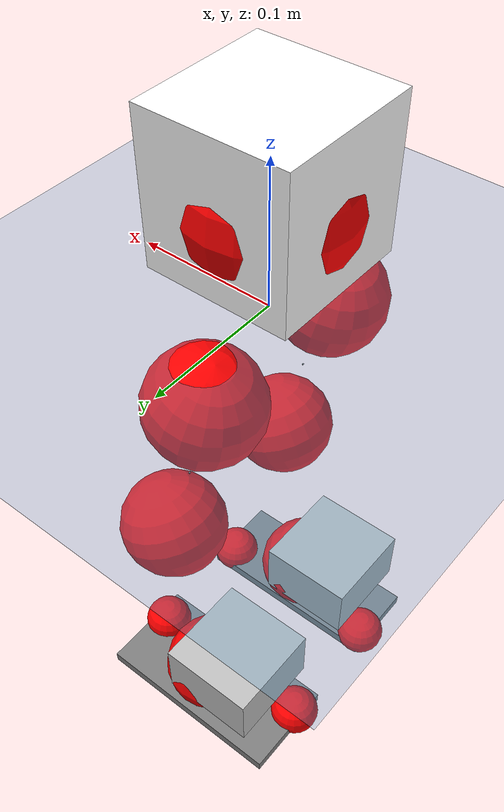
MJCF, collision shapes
<mujoco model="pi_12dof_release_v1">
  <compiler angle="radian" assetdir="assets" balanceinertia="true" inertiafromgeom="false"/>

  <option timestep="0.005" density="1.2" viscosity="2e-05"/>

  <size nkey="1"/>

  <visual>
    <quality shadowsize="8192"/>
    <map shadowclip="0.5"/>
  </visual>

  <default>
    <default class="/">
      <joint armature="0.01" damping="0.01" frictionloss="0.01"/>
      <geom contype="0" conaffinity="0" group="1" solref="-1000 -80"/>
      <site size="0.01 0.005 0.005" group="5"/>
      <general forcelimited="true" biastype="affine" gainprm="20" biasprm="0 -20 -0.5"/>
      <default class="foot">
        <geom size="0.0845 0.036 0.005" type="box" condim="6" group="4" priority="1" friction="0.9 0.2 0.2" solimp="0.015 1 0.005"/>
      </default>
      <default class="reward_collision_sphere">
        <geom group="5" rgba="1 0 0 1"/>
      </default>
    </default>
  </default>

  <asset>
    <texture type="skybox" colorspace="auto" name="//unnamed_texture_0" builtin="gradient" rgb1="0.95 0.95 0.95" rgb2="0.95 0.95 0.95" width="100" height="600"/>
    <texture type="2d" colorspace="auto" name="texplane" builtin="checker" rgb1="0.345 0.575 0.748" rgb2="0.345 0.575 0.748" markrgb="1 1 1" width="512" height="512"/>
    <material name="MatPlane" class="/" texture="texplane" texuniform="true" texrepeat="2 2" specular="0.9"/>
    <mesh name="baselink_1" class="/" file="baselink_1.STL"/>
    <mesh name="r_hip_pitch_link" class="/" file="r_hip_pitch_link.STL"/>
    <mesh name="r_hip_roll_link" class="/" file="r_hip_roll_link.STL"/>
    <mesh name="r_thigh_link" class="/" file="r_thigh_link.STL"/>
    <mesh name="r_calf_link" class="/" file="r_calf_link.STL"/>
    <mesh name="r_ankle_pitch_link" class="/" file="r_ankle_pitch_link.STL"/>
    <mesh name="r_ankle_roll_link" class="/" file="r_ankle_roll_link.STL"/>
    <mesh name="l_hip_pitch_link" class="/" file="l_hip_pitch_link.STL"/>
    <mesh name="l_hip_roll_link" class="/" file="l_hip_roll_link.STL"/>
    <mesh name="l_thigh_link" class="/" file="l_thigh_link.STL"/>
    <mesh name="l_calf_link" class="/" file="l_calf_link.STL"/>
    <mesh name="l_ankle_pitch_link" class="/" file="l_ankle_pitch_link.STL"/>
    <mesh name="l_ankle_roll_link" class="/" file="l_ankle_roll_link.STL"/>
  </asset>

  <worldbody>
    <geom name="floor" class="/" size="100 100 0.125" type="plane" group="0" material="MatPlane"/>
    <light name="toplight_shadow" class="/" pos="0 0 5" dir="0.0990148 0.0990148 -0.990148" type="directional" ambient="0.04 0.04 0.04" diffuse="0.55 0.55 0.55" specular="0.12 0.12 0.12"/>
    <light name="toplight_fill" class="/" pos="0 0 5" dir="0.0990148 0.0990148 -0.990148" type="directional" castshadow="false" ambient="0.04 0.04 0.04" diffuse="0.3 0.3 0.3" specular="0.08 0.08 0.08"/>
    <body name="trunk" pos="-0.000169354 -0.000331862 -0.00263738" quat="0.999999 0.000324522 -0.000459728 0.00114261">
      <inertial pos="0.00112609 0.00102718 0.0443614" quat="0.692267 0.00108854 0.0173816 0.721432" mass="2.15669" diaginertia="0.013374 0.0039314 0.00662754"/>
      <joint name="//unnamed_joint_0" type="free"/>
      <geom name="//unnamed_geom_1" class="/" type="mesh" density="0" rgba="1 1 1 1" mesh="baselink_1"/>
      <geom name="//unnamed_geom_2" class="/" size="0.0497737 0.0497737 0.0497737" pos="0 0 0.0871204" type="box" rgba="1 1 1 1"/>
      <geom name="//unnamed_geom_3" class="reward_collision_sphere" size="0.0547511" pos="0 0 0.0762303"/>
      <site name="imu" class="/" pos="-0.00409537 0.00330148 -0.00949146" size="0.00995474"/>
      <camera name="track" class="/" pos="0 -1.67962 0" quat="0.707107 0.707107 0 0" mode="trackcom"/>
      <camera name="ego_camera" class="/" pos="0.0793205 0 0.196021" quat="-0.5 -0.5 0.5 0.5"/>
      <body name="r_hip_pitch_link" pos="0.00159881 -0.0194601 -0.0341773" quat="0.992201 -2.16803e-05 -0.124648 -1.28335e-05">
        <inertial pos="-0.00124426 -0.0478401 -0.00242439" quat="-0.0280218 0.701097 -0.0353638 0.711637" mass="0.361879" diaginertia="0.000145537 4.12017e-05 0.000126206"/>
        <joint name="r_hip_pitch_joint" class="/" pos="0 0 0" axis="-0.00474281 -0.999986 -0.00232919" stiffness="0.00318335" range="-1.77133 1.27153" armature="0.00990801" damping="0.0169675" frictionloss="0.00966639"/>
        <geom name="//unnamed_geom_4" class="/" type="mesh" density="0" rgba="0.75294 0.75294 0.75294 1" mesh="r_hip_pitch_link"/>
        <geom name="//unnamed_geom_5" class="/" size="0.000497737 0.000497737 0.000497737" type="box" rgba="0.75294 0.75294 0.75294 1"/>
        <body name="r_hip_roll_link" pos="-0.00153107 -0.0459872 0.00240047" quat="1 1.7847e-05 1.22093e-05 -0.000197894">
          <inertial pos="-0.000933613 0.000177813 -0.0649848" quat="0.702751 -0.0775741 -0.0832269 0.70228" mass="0.367415" diaginertia="0.000424523 0.000112807 0.000186134"/>
          <joint name="r_hip_roll_joint" class="/" pos="0 0 0" axis="-0.999973 0.00295702 -0.00679958" stiffness="0.000180421" range="-0.116434 0.500915" armature="0.00865346" damping="0.0076159" frictionloss="0.0103645"/>
          <geom name="//unnamed_geom_6" class="/" type="mesh" density="0" rgba="0.75294 0.75294 0.75294 1" mesh="r_hip_roll_link"/>
          <geom name="//unnamed_geom_7" class="/" size="0.000497737 0.000497737 0.000497737" type="box" rgba="0.75294 0.75294 0.75294 1"/>
          <geom name="//unnamed_geom_8" class="reward_collision_sphere" size="0.039819"/>
          <body name="r_thigh_link" pos="0.00147938 0.000376896 -0.0749486" quat="1 0.000350969 7.24071e-05 -5.59038e-05">
            <inertial pos="-0.00226849 -0.00180592 -0.0520825" quat="0.737451 0.675395 0.00197339 -0.00191348" mass="0.11012" diaginertia="0.000159205 3.93973e-05 8.85548e-05"/>
            <joint name="r_thigh_joint" class="/" pos="0 0 0" axis="-0.00242971 -0.000140662 -0.999997" range="-0.303617 0.636122" armature="0.00875627" damping="0.0119237" frictionloss="0.0102741"/>
            <geom name="//unnamed_geom_9" class="/" type="mesh" density="0" rgba="0.75294 0.75294 0.75294 1" mesh="r_thigh_link"/>
            <geom name="//unnamed_geom_10" class="/" size="0.000497737 0.000497737 0.000497737" type="box" rgba="0.75294 0.75294 0.75294 1"/>
            <body name="r_calf_link" pos="-0.00158445 -0.00105575 -0.0765335" quat="0.947782 0.00107174 0.318917 0.00069957">
              <inertial pos="-2.34539e-05 -0.000786012 -0.0765523" quat="0.999895 -0.00161256 -0.0128902 0.0064666" mass="0.839559" diaginertia="0.00467538 0.00147667 0.000269524"/>
              <joint name="r_calf_joint" class="/" pos="0 0 0" axis="0.00515079 -0.999986 0.00156548" stiffness="0.00283861" range="-1.64507 0.65441" armature="0.0100224" damping="0.0100847" frictionloss="0.0101063"/>
              <geom name="//unnamed_geom_11" class="/" type="mesh" density="0" rgba="0.75294 0.75294 0.75294 1" mesh="r_calf_link"/>
              <geom name="//unnamed_geom_12" class="/" size="0.000497737 0.000497737 0.000497737" type="box" rgba="0.75294 0.75294 0.75294 1"/>
              <geom name="//unnamed_geom_13" class="reward_collision_sphere" size="0.039819"/>
              <body name="r_ankle_pitch_link" pos="0.0012003 0.000707179 -0.152187" quat="0.980068 -1.36033e-05 -0.198661 2.25224e-05">
                <inertial pos="0.00513752 0.00277309 0.000701942" quat="-0.000978076 0.705951 -0.00607324 0.708234" mass="0.177109" diaginertia="0.000408712 9.00712e-05 0.000182313"/>
                <joint name="r_ankle_pitch_joint" class="/" pos="0 0 0" axis="-0.00256781 -0.999995 -0.00191537" range="-1.30601 0.498563" armature="0.0102781" damping="0.0233687" frictionloss="0.00968821"/>
                <geom name="//unnamed_geom_14" class="/" type="mesh" density="0" rgba="0.75294 0.75294 0.75294 1" mesh="r_ankle_pitch_link"/>
                <geom name="//unnamed_geom_15" class="/" size="0.0388235 0.039819 0.0248868" type="box" rgba="0.75294 0.75294 0.75294 1"/>
                <body name="r_ankle_roll_link" pos="0.0786602 0.0010396 0.000858438" quat="1 -0.000141232 0.000527305 3.93353e-06">
                  <inertial pos="-0.0238258 -0.00234536 -0.0140044" quat="0.567519 0.420406 0.431686 0.561096" mass="0.498992" diaginertia="0.0014408 0.000429589 0.000414972"/>
                  <joint name="r_ankle_roll_joint" class="/" pos="0 0 0" axis="-0.999993 -0.00214434 -0.00321851" range="-0.202921 0.166101" armature="0.00877604" damping="0.0057184" frictionloss="0.00867865"/>
                  <geom name="//unnamed_geom_16" class="/" type="mesh" density="0" rgba="0.75294 0.75294 0.75294 1" mesh="r_ankle_roll_link"/>
                  <geom name="//unnamed_geom_17" class="/" type="mesh" rgba="0.75294 0.75294 0.75294 1" mesh="r_ankle_roll_link"/>
                  <geom name="right_foot" class="foot" size="0.0800438 0.0334587 0.00439955" pos="-0.0539379 0 -0.0479162"/>
                  <geom name="//unnamed_geom_19" class="reward_collision_sphere" size="0.039819" pos="-0.0528803 0 -0.0217801"/>
                  <geom name="//unnamed_geom_20" class="reward_collision_sphere" size="0.0199095" pos="0.0158641 0.0167962 -0.0435602"/>
                  <geom name="//unnamed_geom_21" class="reward_collision_sphere" size="0.0199095" pos="-0.126913 0.0167962 -0.0435602"/>
                  <site name="right_foot" class="foot" pos="-0.0539379 0 -0.0479162" size="0.00995474"/>
                </body>
              </body>
            </body>
          </body>
        </body>
      </body>
      <body name="l_hip_pitch_link" pos="0.000518012 0.0183086 -0.034123" quat="0.992146 8.10222e-05 -0.125082 -5.86826e-05">
        <inertial pos="0.00146657 0.0426168 -0.00261733" quat="-0.0374497 0.70637 0.0322114 0.706117" mass="0.381134" diaginertia="0.000168544 4.32506e-05 0.000149526"/>
        <joint name="l_hip_pitch_joint" class="/" pos="0 0 0" axis="0.00328261 0.99992 -0.0121899" range="-1.29934 1.74941" armature="0.0100177" damping="0" frictionloss="0.0100953"/>
        <geom name="//unnamed_geom_22" class="/" type="mesh" density="0" rgba="0.75294 0.75294 0.75294 1" mesh="l_hip_pitch_link"/>
        <geom name="//unnamed_geom_23" class="/" size="0.000497737 0.000497737 0.000497737" type="box" rgba="0.75294 0.75294 0.75294 1"/>
        <body name="l_hip_roll_link" pos="-0.00111645 0.0445608 0.00219945" quat="1 0.000616932 0.00034387 0.000365508">
          <inertial pos="0.001036 -0.00178345 -0.0692033" quat="0.699324 -0.0753878 -0.0778315 0.706545" mass="0.393005" diaginertia="0.000469786 0.000119164 0.000206681"/>
          <joint name="l_hip_roll_joint" class="/" pos="0 0 0" axis="-0.999991 -0.000213963 0.00413497" range="-0.50296 0.102558" armature="0.00921734" damping="0.0105119" frictionloss="0.00992379"/>
          <geom name="//unnamed_geom_24" class="/" type="mesh" density="0" rgba="0.75294 0.75294 0.75294 1" mesh="l_hip_roll_link"/>
          <geom name="//unnamed_geom_25" class="/" size="0.000497737 0.000497737 0.000497737" type="box" rgba="0.75294 0.75294 0.75294 1"/>
          <geom name="//unnamed_geom_26" class="reward_collision_sphere" size="0.039819"/>
          <body name="l_thigh_link" pos="-0.00140232 -0.000148582 -0.0773522" quat="1 -0.000590289 -0.000400404 0.000604174">
            <inertial pos="-0.00211152 -0.000662964 -0.054569" quat="0.672491 0.740013 0.00243573 -0.0114844" mass="0.109851" diaginertia="0.000162668 3.87122e-05 8.65968e-05"/>
            <joint name="l_thigh_joint" class="/" pos="0 0 0" axis="0.00141939 -0.00111255 -0.999998" range="-0.612285 0.30989" armature="0.0103364" damping="0.00900182" frictionloss="0.0112716"/>
            <geom name="//unnamed_geom_27" class="/" type="mesh" density="0" rgba="0.75294 0.75294 0.75294 1" mesh="l_thigh_link"/>
            <geom name="//unnamed_geom_28" class="/" size="0.000497737 0.000497737 0.000497737" type="box" rgba="0.75294 0.75294 0.75294 1"/>
            <body name="l_calf_link" pos="0.00191565 0.000116955 -0.0745257" quat="0.947583 0.000128446 0.319509 0.000170414">
              <inertial pos="-0.00150332 0.00162112 -0.0774616" quat="0.999886 0.00780213 0.0114316 0.00598023" mass="0.802151" diaginertia="0.00496822 0.00151423 0.000277184"/>
              <joint name="l_calf_joint" class="/" pos="0 0 0" axis="-0.0038775 0.999992 0.000967139" range="-0.696501 1.70317" armature="0.00948352" damping="0.000608502" frictionloss="0.0104954"/>
              <geom name="//unnamed_geom_29" class="/" type="mesh" density="0" rgba="0.75294 0.75294 0.75294 1" mesh="l_calf_link"/>
              <geom name="//unnamed_geom_30" class="/" size="0.000497737 0.000497737 0.000497737" type="box" rgba="0.75294 0.75294 0.75294 1"/>
              <geom name="//unnamed_geom_31" class="reward_collision_sphere" size="0.039819"/>
              <body name="l_ankle_pitch_link" pos="0.00240947 -8.52271e-05 -0.152261" quat="0.980073 -1.02855e-05 -0.198638 0.000250686">
                <inertial pos="0.00511296 -0.00151809 -0.00262653" quat="-0.00240637 0.711013 0.00428502 0.703162" mass="0.169904" diaginertia="0.000423943 9.4073e-05 0.000183411"/>
                <joint name="l_ankle_pitch_joint" class="/" pos="0 0 0" axis="-0.000151995 1 -0.000233704" stiffness="0.0063111" range="-0.53136 1.31312" armature="0.0101288" damping="0" frictionloss="0.0089838"/>
                <geom name="//unnamed_geom_32" class="/" type="mesh" density="0" rgba="0.75294 0.75294 0.75294 1" mesh="l_ankle_pitch_link"/>
                <geom name="//unnamed_geom_33" class="/" size="0.0388235 0.039819 0.0248868" type="box" rgba="0.75294 0.75294 0.75294 1"/>
                <body name="l_ankle_roll_link" pos="0.0773413 0.00238052 -0.0024531" quat="0.999999 0.00102224 7.78363e-05 -0.000822152">
                  <inertial pos="-0.026266 -0.000528829 -0.0160707" quat="0.557422 0.431359 0.444645 0.552721" mass="0.522343" diaginertia="0.0015237 0.000436737 0.000424298"/>
                  <joint name="l_ankle_roll_joint" class="/" pos="0 0 0" axis="-1 -8.12194e-05 -4.64557e-06" stiffness="0.00353193" range="-0.159844 0.100053" armature="0.0100168" damping="0" frictionloss="0.00994415"/>
                  <geom name="//unnamed_geom_34" class="/" type="mesh" density="0" rgba="0.75294 0.75294 0.75294 1" mesh="l_ankle_roll_link"/>
                  <geom name="//unnamed_geom_35" class="/" type="mesh" rgba="0.75294 0.75294 0.75294 1" mesh="l_ankle_roll_link"/>
                  <geom name="left_foot" class="foot" size="0.0806831 0.0397567 0.00459425" pos="-0.0539379 0 -0.0479162"/>
                  <geom name="//unnamed_geom_37" class="reward_collision_sphere" size="0.039819" pos="-0.0528803 0 -0.0217801"/>
                  <geom name="//unnamed_geom_38" class="reward_collision_sphere" size="0.0199095" pos="0.0158641 -0.0167962 -0.0435602"/>
                  <geom name="//unnamed_geom_39" class="reward_collision_sphere" size="0.0199095" pos="-0.126913 -0.0167962 -0.0435602"/>
                  <site name="left_foot" class="foot" pos="-0.0539379 0 -0.0479162" size="0.00995474"/>
                </body>
              </body>
            </body>
          </body>
        </body>
      </body>
    </body>
  </worldbody>

  <contact>
    <pair class="/" geom1="floor" geom2="right_foot" name="//unnamed_contact_1"/>
    <pair class="/" geom1="floor" geom2="left_foot" name="//unnamed_contact_0"/>
  </contact>

  <actuator>
    <general name="r_hip_pitch_joint" class="/" joint="r_hip_pitch_joint" forcerange="-22.757 22.757" gainprm="18.6717" biasprm="0 -18.6717 -0.4701"/>
    <general name="r_hip_roll_joint" class="/" joint="r_hip_roll_joint" forcerange="-18.8524 18.8524" gainprm="18.6717" biasprm="0 -18.6717 -0.4701"/>
    <general name="r_thigh_joint" class="/" joint="r_thigh_joint" forcerange="-21.2044 21.2044" gainprm="18.6717" biasprm="0 -18.6717 -0.4701"/>
    <general name="r_calf_joint" class="/" joint="r_calf_joint" forcerange="-22.937 22.937" gainprm="18.6717" biasprm="0 -18.6717 -0.4701"/>
    <general name="r_ankle_pitch_joint" class="/" joint="r_ankle_pitch_joint" forcerange="-21.1253 21.1253" gainprm="18.6717" biasprm="0 -18.6717 -0.4701"/>
    <general name="r_ankle_roll_joint" class="/" joint="r_ankle_roll_joint" forcerange="-18.8129 18.8129" gainprm="18.6717" biasprm="0 -18.6717 -0.4701"/>
    <general name="l_hip_pitch_joint" class="/" joint="l_hip_pitch_joint" forcerange="-21.0891 21.0891" gainprm="18.6717" biasprm="0 -18.6717 -0.4701"/>
    <general name="l_hip_roll_joint" class="/" joint="l_hip_roll_joint" forcerange="-20.3392 20.3392" gainprm="18.6717" biasprm="0 -18.6717 -0.4701"/>
    <general name="l_thigh_joint" class="/" joint="l_thigh_joint" forcerange="-21.3254 21.3254" gainprm="18.6717" biasprm="0 -18.6717 -0.4701"/>
    <general name="l_calf_joint" class="/" joint="l_calf_joint" forcerange="-21.3301 21.3301" gainprm="18.6717" biasprm="0 -18.6717 -0.4701"/>
    <general name="l_ankle_pitch_joint" class="/" joint="l_ankle_pitch_joint" forcerange="-21.1601 21.1601" gainprm="18.6717" biasprm="0 -18.6717 -0.4701"/>
    <general name="l_ankle_roll_joint" class="/" joint="l_ankle_roll_joint" forcerange="-21.0874 21.0874" gainprm="18.6717" biasprm="0 -18.6717 -0.4701"/>
  </actuator>

  <sensor>
    <gyro site="imu" name="imu_angular_velocity"/>
    <velocimeter site="imu" name="imu_linear_velocity"/>
    <framelinvel objtype="site" objname="left_foot" name="left_foot_global_linear_velocity"/>
    <framelinvel objtype="site" objname="right_foot" name="right_foot_global_linear_velocity"/>
  </sensor>

  <keyframe>
    <key name="home" qpos="0 0 0.291 1 0 0 0 0.4 0 0 -0.8 0.4 0 -0.4 0 0 0.8 -0.4 0"/>
  </keyframe>
</mujoco>
